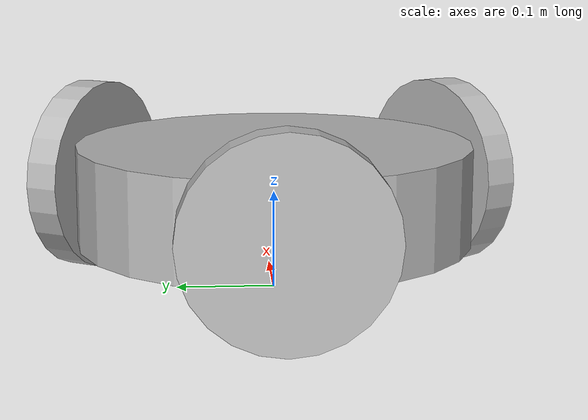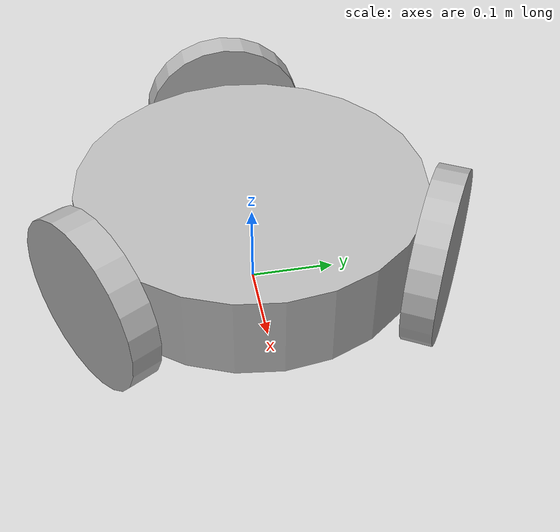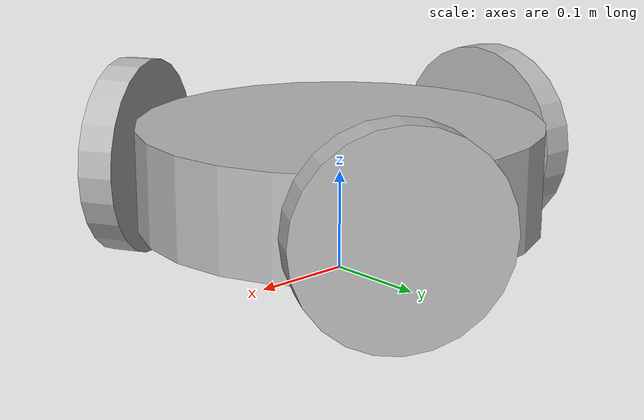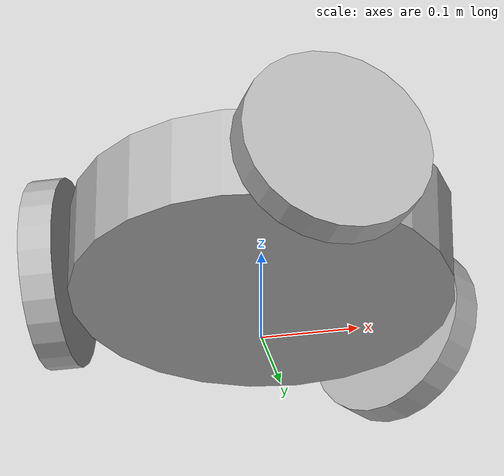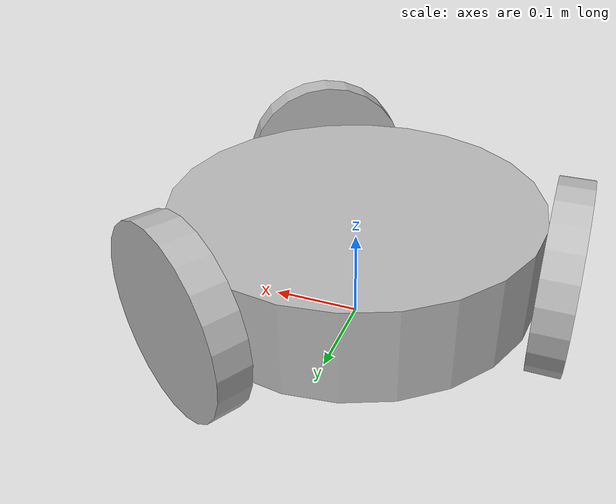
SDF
<?xml version='1.0'?>

<sdf version='1.4'>

<model name="omnidrive">

<static>false</static>

    <link name='chassis'>
        <pose>0 0 0.1 0 0 0</pose>

        <collision name='collision'>
            <geometry>
                <cylinder>
                    <radius>0.2</radius>
                    <length>0.1</length>
                </cylinder>
            </geometry>
        </collision>

        <visual name='visual'>
            <pose>0 0 0.0 0 0 0</pose>
            <geometry>
                <cylinder>
                    <radius>0.2</radius>
                    <length>0.1</length>
                </cylinder>
            </geometry>
        </visual>
    </link>

    <link name="wheel1">
        <pose>0.10875 0.188360525323115 0.1 0 -1.5707963267949 1.0471975511966</pose>

        <collision name="collision">
            <geometry>
                <cylinder>
                    <radius>0.1</radius>
                    <length>0.035</length>
                </cylinder>
            </geometry>

            <surface>
                <friction>
                    <torsional>
                        <coefficient>1.0</coefficient>
                        <ode>
                            <slip>1.0</slip>
                        </ode>
                    </torsional>
                </friction>
            </surface>
        </collision>

        <visual name="visual">
            <geometry>
                <cylinder>
                    <radius>0.1</radius>
                    <length>0.035</length>
                </cylinder>
            </geometry>
        </visual>

        <inertial>
            <mass>0.32</mass>
            <pose>0 0 0 0 0 0</pose>
            <inertia>
                <ixx>0.002602083</ixx>
                <iyy>0.002602083</iyy>
                <izz>0.005</izz>
            </inertia>
        </inertial>
    </link>

    <link name="wheel2">
        <pose>-0.2175 0 0.1 0 -1.5707963267949 0</pose>

        <collision name="collision">
            <geometry>
                <cylinder>
                    <radius>0.1</radius>
                    <length>0.035</length>
                </cylinder>
            </geometry>

            <surface>
                <friction>
                    <torsional>
                        <coefficient>1.0</coefficient>
                        <ode>
                            <slip>1.0</slip>
                        </ode>
                    </torsional>
                </friction>
            </surface>
        </collision>

        <visual name="visual">
            <geometry>
                <cylinder>
                    <radius>0.1</radius>
                    <length>0.035</length>
                </cylinder>
            </geometry>
        </visual>

        <inertial>
            <mass>0.32</mass>
            <pose>0 0 0 0 0 0</pose>
            <inertia>
                <ixx>0.002602083</ixx>
                <iyy>0.002602083</iyy>
                <izz>0.005</izz>
            </inertia>
        </inertial>
    </link>

    <link name="wheel3">
        <pose>0.10875 -0.188360525323115 0.1 0 -1.5707963267949 -1.0471975511966</pose>

        <collision name="collision">
            <geometry>
                <cylinder>
                    <radius>0.1</radius>
                    <length>0.035</length>
                </cylinder>
            </geometry>

            <surface>
                <friction>
                    <torsional>
                        <coefficient>1.0</coefficient>
                        <ode>
                            <slip>1.0</slip>
                        </ode>
                    </torsional>
                </friction>
            </surface>
        </collision>

        <visual name="visual">
            <geometry>
                <cylinder>
                    <radius>0.1</radius>
                    <length>0.035</length>
                </cylinder>
            </geometry>
        </visual>

        <inertial>
            <mass>0.32</mass>
            <pose>0 0 0 0 0 0</pose>
            <inertia>
                <ixx>0.002602083</ixx>
                <iyy>0.002602083</iyy>
                <izz>0.005</izz>
            </inertia>
        </inertial>
    </link>

    <joint type="revolute" name="wheel1_hinge">
        <pose>0 0 -0.0175 0 0 0</pose>
        <child>wheel1</child>
        <parent>chassis</parent>
        <axis>
            <xyz>0.5 0.866025403784439 0</xyz>
        </axis>
    </joint>

    <joint type="revolute" name="wheel2_hinge">
        <pose>0 0 -0.0175 0 0 0</pose>
        <child>wheel2</child>
        <parent>chassis</parent>
        <axis>
            <xyz>-1 0 0</xyz>
        </axis>
    </joint>

    <joint type="revolute" name="wheel3_hinge">
        <pose>0 0 -0.0175 0 0 0</pose>
        <child>wheel3</child>
        <parent>chassis</parent>
        <axis>
            <xyz>0.5 -0.866025403784439 0</xyz>
        </axis>
    </joint>

    <plugin name="object_controller" filename="libgazebo_ros_planar_move.so">
        <commandTopic>cmd_vel</commandTopic>
        <odometryTopic>odom</odometryTopic>
        <odometryFrame>odom</odometryFrame>
        <odometryRate>50.0</odometryRate>
        <robotBaseFrame>chassis</robotBaseFrame>
    </plugin>

    <plugin name="p3d_base_controller" filename="libgazebo_ros_p3d.so">
        <alwaysOn>true</alwaysOn>
        <updateRate>50.0</updateRate>
        <bodyName>chassis</bodyName>
        <topicName>ground_truth/state</topicName>
        <gaussianNoise>0</gaussianNoise>
        <frameName>world</frameName>
        <xyzOffsets>0 0 0</xyzOffsets>
        <rpyOffsets>0 0 0</rpyOffsets>
    </plugin>

</model>

</sdf>
